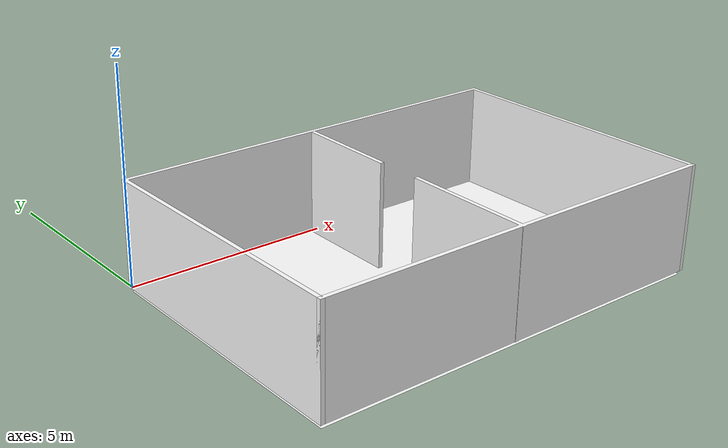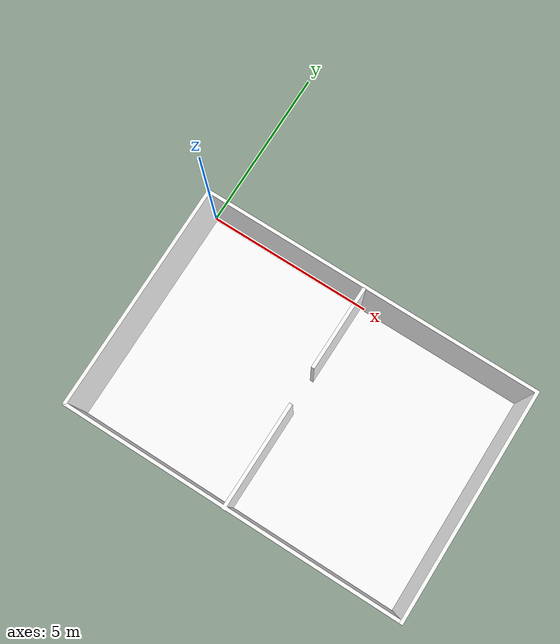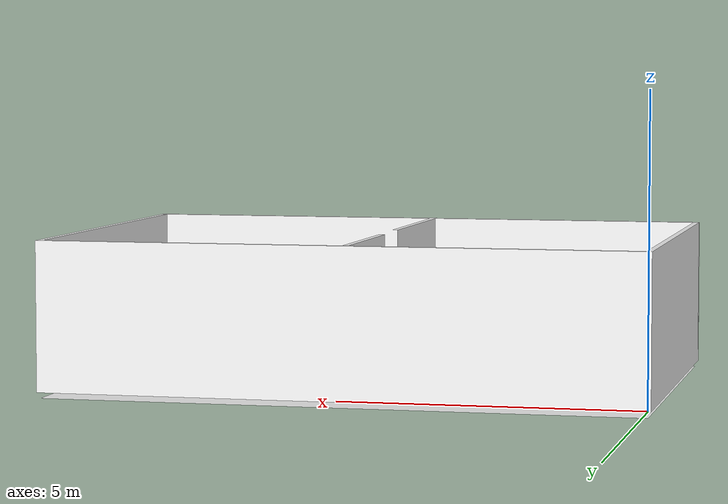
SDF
<?xml version='1.0' encoding='utf-8'?>
<sdf version="1.7">
  <model name="first_L1">
    <static>true</static>
    <link name="floor_1">
      <visual name="visual">
        <geometry>
          <mesh>
            <uri>model://first_L1/meshes/floor_1.obj</uri>
          </mesh>
        </geometry>
        <material>
          <diffuse>1.0 1.0 1.0</diffuse>
          <specular>0.1 0.1 0.1</specular>
          <pbr>
            <metal>
              <metalness>0.0</metalness>
              <albedo_map>model://first_L1/meshes/blue_linoleum.png</albedo_map>
            </metal>
          </pbr>
          <script>
            <uri>model://first_L1/meshes/</uri>
            <name>floor_1_Diffuse</name>
          </script>
        </material>
      </visual>
      <collision name="collision">
        <geometry>
          <mesh>
            <uri>model://first_L1/meshes/floor_1.obj</uri>
          </mesh>
        </geometry>
        <surface>
          <contact>
            <collide_bitmask>0x01</collide_bitmask>
          </contact>
        </surface>
      </collision>
    </link>
    <link name="wall_1">
      <visual name="wall_1">
        <geometry>
          <mesh>
            <uri>model://first_L1/meshes/wall_1.obj</uri>
          </mesh>
        </geometry>
        <transparency>0.0</transparency>
        <material>
          <diffuse>1.0 1.0 1.0</diffuse>
          <specular>0.1 0.1 0.1</specular>
          <pbr>
            <metal>
              <metalness>0.0</metalness>
              <albedo_map>model://first_L1/meshes/default.png</albedo_map>
            </metal>
          </pbr>
          <script>
            <uri>model://first_L1/meshes/</uri>
            <name>wall_1_Diffuse</name>
          </script>
        </material>
      </visual>
      <collision name="collision">
        <geometry>
          <mesh>
            <uri>model://first_L1/meshes/wall_1.obj</uri>
          </mesh>
        </geometry>
        <surface>
          <contact>
            <collide_bitmask>0x01</collide_bitmask>
          </contact>
        </surface>
      </collision>
      <pose>-0.05000000000000021 -6.716666666666667 0 0 0 0</pose>
    </link>
    <link name="wall_2">
      <visual name="wall_2">
        <geometry>
          <mesh>
            <uri>model://first_L1/meshes/wall_2.obj</uri>
          </mesh>
        </geometry>
        <transparency>0.0</transparency>
        <material>
          <diffuse>1.0 1.0 1.0</diffuse>
          <specular>0.1 0.1 0.1</specular>
          <pbr>
            <metal>
              <metalness>0.0</metalness>
              <albedo_map>model://first_L1/meshes/default.png</albedo_map>
            </metal>
          </pbr>
          <script>
            <uri>model://first_L1/meshes/</uri>
            <name>wall_2_Diffuse</name>
          </script>
        </material>
      </visual>
      <collision name="collision">
        <geometry>
          <mesh>
            <uri>model://first_L1/meshes/wall_2.obj</uri>
          </mesh>
        </geometry>
        <surface>
          <contact>
            <collide_bitmask>0x01</collide_bitmask>
          </contact>
        </surface>
      </collision>
      <pose>-0.04999999999999982 -6.728828232834652 0 0 0 0</pose>
    </link>
  </model>
</sdf>
